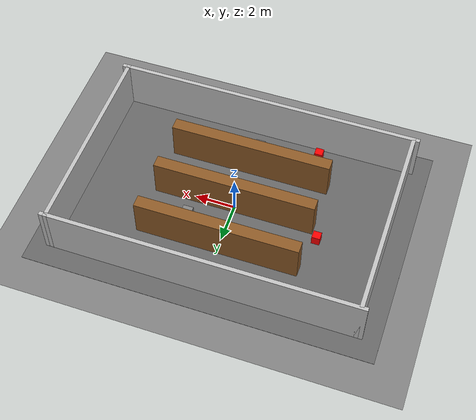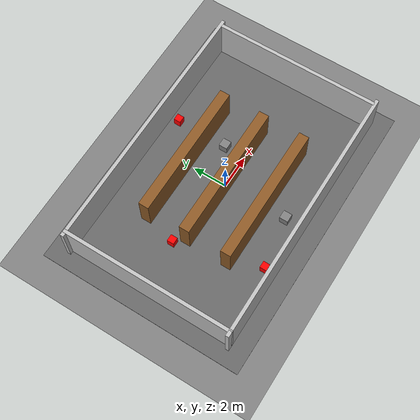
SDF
<?xml version="1.0" ?>
<sdf version="1.9">
  <world name="warehouse">
    <physics name="default_physics" type="ignored">
      <max_step_size>0.001</max_step_size>
      <real_time_factor>1.0</real_time_factor>
    </physics>
    <plugin filename="gz-sim-physics-system" name="gz::sim::systems::Physics"/>
    <plugin filename="gz-sim-sensors-system" name="gz::sim::systems::Sensors">
      <render_engine>ogre2</render_engine>
    </plugin>
    <plugin filename="gz-sim-scene-broadcaster-system" name="gz::sim::systems::SceneBroadcaster"/>
    <plugin filename="gz-sim-user-commands-system" name="gz::sim::systems::UserCommands"/>
    <plugin filename="gz-sim-imu-system" name="gz::sim::systems::Imu"/>

    <light type="directional" name="sun">
      <cast_shadows>true</cast_shadows>
      <pose>0 0 10 0 0 0</pose>
      <diffuse>0.8 0.8 0.8 1</diffuse>
      <specular>0.2 0.2 0.2 1</specular>
      <attenuation>
        <range>1000</range>
        <constant>0.9</constant>
        <linear>0.01</linear>
        <quadratic>0.001</quadratic>
      </attenuation>
      <direction>-0.5 0.1 -0.9</direction>
    </light>

    <model name="ground_plane">
      <static>true</static>
      <link name="link">
        <collision name="collision">
          <geometry><plane><normal>0 0 1</normal><size>17.0 12.0</size></plane></geometry>
        </collision>
        <visual name="visual">
          <geometry><plane><normal>0 0 1</normal><size>17.0 12.0</size></plane></geometry>
          <material>
            <ambient>0.5 0.5 0.5 1</ambient>
            <diffuse>0.5 0.5 0.5 1</diffuse>
          </material>
        </visual>
      </link>
    </model>
    <model name="ambient_floor">
      <static>true</static>
      <pose>0 0 0.005 0 0 0</pose>
      <link name="link">
        <visual name="visual">
          <geometry><box><size>17.0 12.0 0.01</size></box></geometry>
          <material><ambient>0.4 0.4 0.4 1</ambient><diffuse>0.4 0.4 0.4 1</diffuse></material>
          <plugin filename="gz-sim-thermal-system" name="gz::sim::systems::Thermal">
            <temperature>293.0</temperature>
          </plugin>
        </visual>
      </link>
    </model>

    <model name="wall_north">
      <static>true</static>
      <pose>0.0 4.9 1.25 0 0 0.0</pose>
      <link name="link">
        <collision name="collision">
          <geometry><box><size>15.4 0.2 2.5</size></box></geometry>
        </collision>
        <visual name="visual">
          <geometry><box><size>15.4 0.2 2.5</size></box></geometry>
          <material>
            <ambient>0.75 0.75 0.75 1</ambient>
            <diffuse>0.75 0.75 0.75 1</diffuse>
          </material>

        </visual>
      </link>
    </model>

    <model name="wall_south">
      <static>true</static>
      <pose>0.0 -4.9 1.25 0 0 0.0</pose>
      <link name="link">
        <collision name="collision">
          <geometry><box><size>15.4 0.2 2.5</size></box></geometry>
        </collision>
        <visual name="visual">
          <geometry><box><size>15.4 0.2 2.5</size></box></geometry>
          <material>
            <ambient>0.75 0.75 0.75 1</ambient>
            <diffuse>0.75 0.75 0.75 1</diffuse>
          </material>

        </visual>
      </link>
    </model>

    <model name="wall_east">
      <static>true</static>
      <pose>7.4 0.0 1.25 0 0 0.0</pose>
      <link name="link">
        <collision name="collision">
          <geometry><box><size>0.2 10.0 2.5</size></box></geometry>
        </collision>
        <visual name="visual">
          <geometry><box><size>0.2 10.0 2.5</size></box></geometry>
          <material>
            <ambient>0.75 0.75 0.75 1</ambient>
            <diffuse>0.75 0.75 0.75 1</diffuse>
          </material>

        </visual>
      </link>
    </model>

    <model name="wall_west">
      <static>true</static>
      <pose>-7.4 0.0 1.25 0 0 0.0</pose>
      <link name="link">
        <collision name="collision">
          <geometry><box><size>0.2 10.0 2.5</size></box></geometry>
        </collision>
        <visual name="visual">
          <geometry><box><size>0.2 10.0 2.5</size></box></geometry>
          <material>
            <ambient>0.75 0.75 0.75 1</ambient>
            <diffuse>0.75 0.75 0.75 1</diffuse>
          </material>

        </visual>
      </link>
    </model>

    <model name="shelf_1">
      <static>true</static>
      <pose>0.0 -2.5 1.0 0 0 0.0</pose>
      <link name="link">
        <collision name="collision">
          <geometry><box><size>8.0 0.6 2.0</size></box></geometry>
        </collision>
        <visual name="visual">
          <geometry><box><size>8.0 0.6 2.0</size></box></geometry>
          <material>
            <ambient>0.55 0.35 0.15 1</ambient>
            <diffuse>0.55 0.35 0.15 1</diffuse>
          </material>

        </visual>
      </link>
    </model>

    <model name="shelf_2">
      <static>true</static>
      <pose>0.0 0.0 1.0 0 0 0.0</pose>
      <link name="link">
        <collision name="collision">
          <geometry><box><size>8.0 0.6 2.0</size></box></geometry>
        </collision>
        <visual name="visual">
          <geometry><box><size>8.0 0.6 2.0</size></box></geometry>
          <material>
            <ambient>0.55 0.35 0.15 1</ambient>
            <diffuse>0.55 0.35 0.15 1</diffuse>
          </material>

        </visual>
      </link>
    </model>

    <model name="shelf_3">
      <static>true</static>
      <pose>0.0 2.5 1.0 0 0 0.0</pose>
      <link name="link">
        <collision name="collision">
          <geometry><box><size>8.0 0.6 2.0</size></box></geometry>
        </collision>
        <visual name="visual">
          <geometry><box><size>8.0 0.6 2.0</size></box></geometry>
          <material>
            <ambient>0.55 0.35 0.15 1</ambient>
            <diffuse>0.55 0.35 0.15 1</diffuse>
          </material>

        </visual>
      </link>
    </model>

    <model name="obstacle_1">
      <static>true</static>
      <pose>0.0 -3.8 0.25 0 0 0.0</pose>
      <link name="link">
        <collision name="collision">
          <geometry><box><size>0.5 0.5 0.5</size></box></geometry>
        </collision>
        <visual name="visual">
          <geometry><box><size>0.5 0.5 0.5</size></box></geometry>
          <material>
            <ambient>0.5 0.5 0.5 1</ambient>
            <diffuse>0.5 0.5 0.5 1</diffuse>
          </material>

        </visual>
      </link>
    </model>

    <model name="obstacle_2">
      <static>true</static>
      <pose>2.0 1.25 0.25 0 0 0.0</pose>
      <link name="link">
        <collision name="collision">
          <geometry><box><size>0.5 0.5 0.5</size></box></geometry>
        </collision>
        <visual name="visual">
          <geometry><box><size>0.5 0.5 0.5</size></box></geometry>
          <material>
            <ambient>0.5 0.5 0.5 1</ambient>
            <diffuse>0.5 0.5 0.5 1</diffuse>
          </material>

        </visual>
      </link>
    </model>

    <model name="real_fire">
      <static>true</static>
      <pose>-3.0 -4.3 0.25 0 0 0.0</pose>
      <link name="link">
        <collision name="collision">
          <geometry><box><size>0.4 0.4 0.5</size></box></geometry>
        </collision>
        <visual name="visual">
          <geometry><box><size>0.4 0.4 0.5</size></box></geometry>
          <material>
            <ambient>1.0 0.0 0.0 1</ambient>
            <diffuse>1.0 0.0 0.0 1</diffuse>
          </material>
          <plugin filename="gz-sim-thermal-system" name="gz::sim::systems::Thermal">
            <temperature>600.0</temperature>
          </plugin>

        </visual>
      </link>
    </model>

    <model name="fake_fire">
      <static>true</static>
      <pose>2.0 4.3 0.25 0 0 0.0</pose>
      <link name="link">
        <collision name="collision">
          <geometry><box><size>0.4 0.4 0.5</size></box></geometry>
        </collision>
        <visual name="visual">
          <geometry><box><size>0.4 0.4 0.5</size></box></geometry>
          <material>
            <ambient>1.0 0.0 0.0 1</ambient>
            <diffuse>1.0 0.0 0.0 1</diffuse>
          </material>
          <plugin filename="gz-sim-thermal-system" name="gz::sim::systems::Thermal">
            <temperature>293.0</temperature>
          </plugin>

        </visual>
      </link>
    </model>

    <model name="hidden_fire">
      <static>true</static>
      <pose>-4.3 0.6 0.25 0 0 0.0</pose>
      <link name="link">
        <collision name="collision">
          <geometry><box><size>0.4 0.4 0.5</size></box></geometry>
        </collision>
        <visual name="visual">
          <geometry><box><size>0.4 0.4 0.5</size></box></geometry>
          <material>
            <ambient>1.0 0.0 0.0 1</ambient>
            <diffuse>1.0 0.0 0.0 1</diffuse>
          </material>
          <plugin filename="gz-sim-thermal-system" name="gz::sim::systems::Thermal">
            <temperature>600.0</temperature>
          </plugin>

        </visual>
      </link>
    </model>
  </world>
</sdf>
